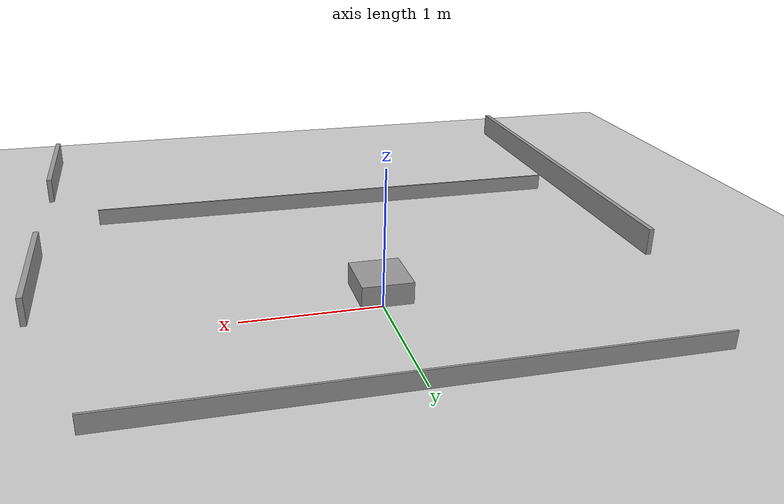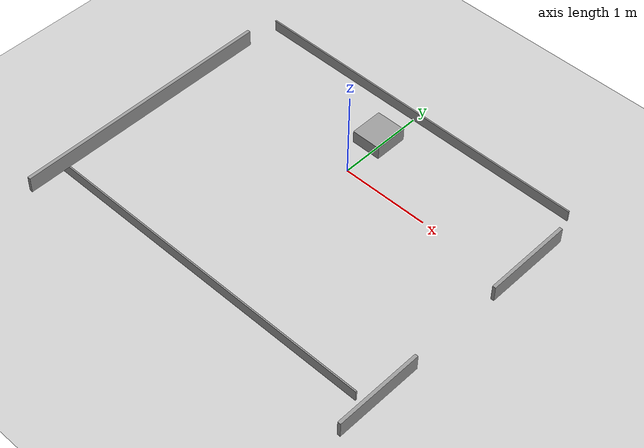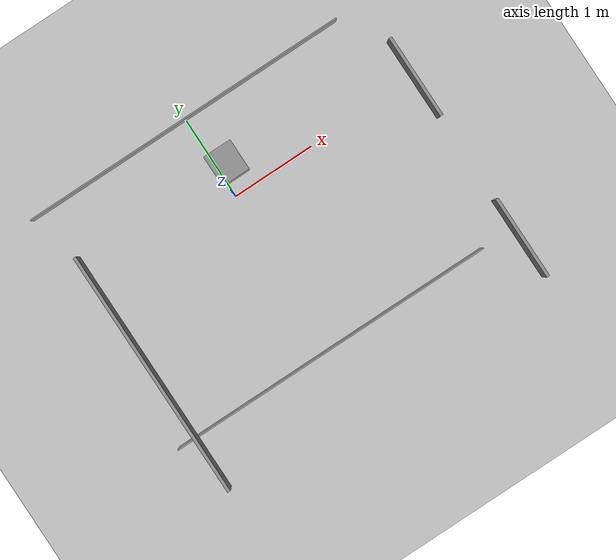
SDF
<sdf version="1.7">
 <world name="default">
  <light name="sun" type="directional">
   <pose>0 0 10 0 -0 0</pose>
   <diffuse>0.8 0.8 0.8 1</diffuse>
   <specular>0.2 0.2 0.2 1</specular>
   <attenuation>
    <range>1000</range>
    <constant>0.9</constant>
    <linear>0.01</linear>
    <quadratic>0.001</quadratic>
   </attenuation>
   <direction>-0.5 0.1 -0.9</direction>
   <spot><inner_angle>0</inner_angle><outer_angle>0</outer_angle><falloff>0</falloff></spot>
  </light>
  <model name="ground_plane">
   <static>1</static>
   <link name="link">
    <collision name="collision">
     <geometry><plane><normal>0 0 1</normal><size>100 100</size></plane></geometry>
     <surface>
      <contact><collide_bitmask>65535</collide_bitmask></contact>
      <friction><ode><mu>100</mu><mu2>50</mu2></ode></friction>
     </surface>
    </collision>
    <visual name="visual">
     <cast_shadows>0</cast_shadows>
     <geometry><plane><normal>0 0 1</normal><size>100 100</size></plane></geometry>
     <material>
      <script><uri>file://media/materials/scripts/gazebo.material</uri><name>Gazebo/Grey</name></script>
     </material>
    </visual>
   </link>
  </model>
  <gravity>0 0 -9.8</gravity>
  <magnetic_field>6e-06 2.3e-05 -4.2e-05</magnetic_field>
  <atmosphere type="adiabatic"/>
  <physics type="ode">
   <max_step_size>0.001</max_step_size>
   <real_time_factor>1</real_time_factor>
   <real_time_update_rate>1000</real_time_update_rate>
  </physics>
  <scene><ambient>0.4 0.4 0.4 1</ambient><background>0.7 0.7 0.7 1</background><shadows>1</shadows></scene>
  <spherical_coordinates>
   <surface_model>EARTH_WGS84</surface_model>
   <latitude_deg>0</latitude_deg>
   <longitude_deg>0</longitude_deg>
   <elevation>0</elevation>
   <heading_deg>0</heading_deg>
  </spherical_coordinates>
  <model name="3m-short-wall">
   <link name="link">
    <inertial>
     <mass>1</mass>
     <inertia>
      <ixx>0.166667</ixx>
      <ixy>0</ixy>
      <ixz>0</ixz>
      <iyy>0.166667</iyy>
      <iyz>0</iyz>
      <izz>0.166667</izz>
     </inertia>
    </inertial>
    <visual name="visual">
     <geometry><box><size>0.036017 2.92239 0.182131</size></box></geometry>
     <material>
      <script><name>Gazebo/Grey</name><uri>file://media/materials/scripts/gazebo.material</uri></script>
      <shader type="pixel"/>
     </material>
    </visual>
    <collision name="collision">
     <geometry><box><size>0.036017 2.92239 0.182131</size></box></geometry>
     <surface>
      <friction>
       <ode><mu>1</mu><mu2>1</mu2><fdir1>0 0 0</fdir1><slip1>0</slip1><slip2>0</slip2></ode>
       <torsional>
        <coefficient>1</coefficient>
        <patch_radius>0</patch_radius>
        <surface_radius>0</surface_radius>
        <use_patch_radius>1</use_patch_radius>
        <ode><slip>0</slip></ode>
       </torsional>
      </friction>
      <bounce><restitution_coefficient>0</restitution_coefficient><threshold>1e+06</threshold></bounce>
      <contact>
       <collide_without_contact>0</collide_without_contact>
       <collide_without_contact_bitmask>1</collide_without_contact_bitmask>
       <collide_bitmask>1</collide_bitmask>
       <ode>
        <soft_cfm>0</soft_cfm>
        <soft_erp>0.2</soft_erp>
        <kp>1e+13</kp>
        <kd>1</kd>
        <max_vel>0.01</max_vel>
        <min_depth>0</min_depth>
       </ode>
       <bullet>
        <split_impulse>1</split_impulse>
        <split_impulse_penetration_threshold>-0.01</split_impulse_penetration_threshold>
        <soft_cfm>0</soft_cfm>
        <soft_erp>0.2</soft_erp>
        <kp>1e+13</kp>
        <kd>1</kd>
       </bullet>
      </contact>
     </surface>
    </collision>
   </link>
   <static>0</static>
   <allow_auto_disable>0</allow_auto_disable>
   <pose>-1.74958 -1.11155 0.468396 0 -0 0</pose>
  </model>
  <model name="4m-short-wall">
   <link name="link">
    <inertial>
     <mass>0.64575</mass>
     <inertia>
      <ixx>0.00343683</ixx>
      <ixy>0</ixy>
      <ixz>0</ixz>
      <iyy>0.865496</iyy>
      <iyz>0</iyz>
      <izz>0.862086</izz>
     </inertia>
    </inertial>
    <kinematic>1</kinematic>
    <pose>-0.375458 -0.595598 -0.00071 0 -0 0</pose>
    <visual name="visual">
     <geometry><box><size>4.00249 0.015986 0.252213</size></box></geometry>
     <material>
      <script><name>Gazebo/Grey</name><uri>file://media/materials/scripts/gazebo.material</uri></script>
      <shader type="pixel"/>
     </material>
    </visual>
    <collision name="collision">
     <geometry><box><size>4.00249 0.015986 0.252213</size></box></geometry>
     <surface>
      <friction>
       <ode><mu>1</mu><mu2>1</mu2><fdir1>0 0 0</fdir1><slip1>0</slip1><slip2>0</slip2></ode>
       <torsional>
        <coefficient>1</coefficient>
        <patch_radius>0</patch_radius>
        <surface_radius>0</surface_radius>
        <use_patch_radius>1</use_patch_radius>
        <ode><slip>0</slip></ode>
       </torsional>
      </friction>
      <bounce><restitution_coefficient>0</restitution_coefficient><threshold>1e+06</threshold></bounce>
      <contact>
       <collide_without_contact>0</collide_without_contact>
       <collide_without_contact_bitmask>1</collide_without_contact_bitmask>
       <collide_bitmask>1</collide_bitmask>
       <ode>
        <soft_cfm>0</soft_cfm>
        <soft_erp>0.2</soft_erp>
        <kp>1e+13</kp>
        <kd>1</kd>
        <max_vel>0.01</max_vel>
        <min_depth>0</min_depth>
       </ode>
       <bullet>
        <split_impulse>1</split_impulse>
        <split_impulse_penetration_threshold>-0.01</split_impulse_penetration_threshold>
        <soft_cfm>0</soft_cfm>
        <soft_erp>0.2</soft_erp>
        <kp>1e+13</kp>
        <kd>1</kd>
       </bullet>
      </contact>
     </surface>
    </collision>
   </link>
   <static>1</static>
   <allow_auto_disable>0</allow_auto_disable>
   <pose>0.359797 1.60551 0 0 -0 0</pose>
  </model>
  <model name="1m-short-wall">
   <link name="link">
    <inertial>
     <mass>1</mass>
     <inertia>
      <ixx>0.166667</ixx>
      <ixy>0</ixy>
      <ixz>0</ixz>
      <iyy>0.166667</iyy>
      <iyz>0</iyz>
      <izz>0.166667</izz>
     </inertia>
    </inertial>
    <visual name="visual">
     <geometry><box><size>0.036017 0.970224 0.182131</size></box></geometry>
     <material>
      <script><name>Gazebo/Grey</name><uri>file://media/materials/scripts/gazebo.material</uri></script>
      <shader type="pixel"/>
     </material>
    </visual>
    <collision name="collision">
     <geometry><box><size>0.036017 0.970224 0.182131</size></box></geometry>
     <surface>
      <friction>
       <ode><mu>1</mu><mu2>1</mu2><fdir1>0 0 0</fdir1><slip1>0</slip1><slip2>0</slip2></ode>
       <torsional>
        <coefficient>1</coefficient>
        <patch_radius>0</patch_radius>
        <surface_radius>0</surface_radius>
        <use_patch_radius>1</use_patch_radius>
        <ode><slip>0</slip></ode>
       </torsional>
      </friction>
      <bounce><restitution_coefficient>0</restitution_coefficient><threshold>1e+06</threshold></bounce>
      <contact>
       <collide_without_contact>0</collide_without_contact>
       <collide_without_contact_bitmask>1</collide_without_contact_bitmask>
       <collide_bitmask>1</collide_bitmask>
       <ode>
        <soft_cfm>0</soft_cfm>
        <soft_erp>0.2</soft_erp>
        <kp>1e+13</kp>
        <kd>1</kd>
        <max_vel>0.01</max_vel>
        <min_depth>0</min_depth>
       </ode>
       <bullet>
        <split_impulse>1</split_impulse>
        <split_impulse_penetration_threshold>-0.01</split_impulse_penetration_threshold>
        <soft_cfm>0</soft_cfm>
        <soft_erp>0.2</soft_erp>
        <kp>1e+13</kp>
        <kd>1</kd>
       </bullet>
      </contact>
     </surface>
    </collision>
   </link>
   <static>0</static>
   <allow_auto_disable>0</allow_auto_disable>
   <pose>2.25587 -0.037774 0.468396 0 -0 0</pose>
  </model>
  <model name="1m-short-wall_clone">
   <link name="link">
    <inertial>
     <mass>1</mass>
     <inertia>
      <ixx>0.166667</ixx>
      <ixy>0</ixy>
      <ixz>0</ixz>
      <iyy>0.166667</iyy>
      <iyz>0</iyz>
      <izz>0.166667</izz>
     </inertia>
    </inertial>
    <visual name="visual">
     <geometry><box><size>0.036017 0.970224 0.182131</size></box></geometry>
     <material>
      <script><name>Gazebo/Grey</name><uri>file://media/materials/scripts/gazebo.material</uri></script>
      <shader type="pixel"/>
     </material>
    </visual>
    <collision name="collision">
     <geometry><box><size>0.036017 0.970224 0.182131</size></box></geometry>
     <surface>
      <friction>
       <ode><mu>1</mu><mu2>1</mu2><fdir1>0 0 0</fdir1><slip1>0</slip1><slip2>0</slip2></ode>
       <torsional>
        <coefficient>1</coefficient>
        <patch_radius>0</patch_radius>
        <surface_radius>0</surface_radius>
        <use_patch_radius>1</use_patch_radius>
        <ode><slip>0</slip></ode>
       </torsional>
      </friction>
      <bounce><restitution_coefficient>0</restitution_coefficient><threshold>1e+06</threshold></bounce>
      <contact>
       <collide_without_contact>0</collide_without_contact>
       <collide_without_contact_bitmask>1</collide_without_contact_bitmask>
       <collide_bitmask>1</collide_bitmask>
       <ode>
        <soft_cfm>0</soft_cfm>
        <soft_erp>0.2</soft_erp>
        <kp>1e+13</kp>
        <kd>1</kd>
        <max_vel>0.01</max_vel>
        <min_depth>0</min_depth>
       </ode>
       <bullet>
        <split_impulse>1</split_impulse>
        <split_impulse_penetration_threshold>-0.01</split_impulse_penetration_threshold>
        <soft_cfm>0</soft_cfm>
        <soft_erp>0.2</soft_erp>
        <kp>1e+13</kp>
        <kd>1</kd>
       </bullet>
      </contact>
     </surface>
    </collision>
   </link>
   <static>0</static>
   <allow_auto_disable>0</allow_auto_disable>
   <pose>2.25678 -2.05064 0.468396 0 -0 0</pose>
  </model>
  <model name="4m-short-wall_clone">
   <link name="link">
    <inertial>
     <mass>0.64575</mass>
     <inertia>
      <ixx>0.00343683</ixx>
      <ixy>0</ixy>
      <ixz>0</ixz>
      <iyy>0.865496</iyy>
      <iyz>0</iyz>
      <izz>0.862086</izz>
     </inertia>
    </inertial>
    <kinematic>1</kinematic>
    <pose>-0.375458 -0.595598 -0.00071 0 -0 0</pose>
    <visual name="visual">
     <geometry><box><size>4.00249 0.015986 0.252213</size></box></geometry>
     <material>
      <script><name>Gazebo/Grey</name><uri>file://media/materials/scripts/gazebo.material</uri></script>
      <shader type="pixel"/>
     </material>
    </visual>
    <collision name="collision">
     <geometry><box><size>4.00249 0.015986 0.252213</size></box></geometry>
     <surface>
      <friction>
       <ode><mu>1</mu><mu2>1</mu2><fdir1>0 0 0</fdir1><slip1>0</slip1><slip2>0</slip2></ode>
       <torsional>
        <coefficient>1</coefficient>
        <patch_radius>0</patch_radius>
        <surface_radius>0</surface_radius>
        <use_patch_radius>1</use_patch_radius>
        <ode><slip>0</slip></ode>
       </torsional>
      </friction>
      <bounce><restitution_coefficient>0</restitution_coefficient><threshold>1e+06</threshold></bounce>
      <contact>
       <collide_without_contact>0</collide_without_contact>
       <collide_without_contact_bitmask>1</collide_without_contact_bitmask>
       <collide_bitmask>1</collide_bitmask>
       <ode>
        <soft_cfm>0</soft_cfm>
        <soft_erp>0.2</soft_erp>
        <kp>1e+13</kp>
        <kd>1</kd>
        <max_vel>0.01</max_vel>
        <min_depth>0</min_depth>
       </ode>
       <bullet>
        <split_impulse>1</split_impulse>
        <split_impulse_penetration_threshold>-0.01</split_impulse_penetration_threshold>
        <soft_cfm>0</soft_cfm>
        <soft_erp>0.2</soft_erp>
        <kp>1e+13</kp>
        <kd>1</kd>
       </bullet>
      </contact>
     </surface>
    </collision>
   </link>
   <static>1</static>
   <allow_auto_disable>0</allow_auto_disable>
   <pose>0.320675 -1.37727 0 0 -0 0</pose>
  </model>
  <model name="half-meter-short-box">
   <link name="link">
    <inertial>
     <mass>1</mass>
     <inertia>
      <ixx>0.166667</ixx>
      <ixy>0</ixy>
      <ixz>0</ixz>
      <iyy>0.166667</iyy>
      <iyz>0</iyz>
      <izz>0.166667</izz>
     </inertia>
    </inertial>
    <visual name="visual">
     <geometry><box><size>0.337429 0.37113 0.145877</size></box></geometry>
     <material>
      <script><name>Gazebo/Grey</name><uri>file://media/materials/scripts/gazebo.material</uri></script>
      <shader type="pixel"/>
     </material>
    </visual>
    <collision name="collision">
     <geometry><box><size>0.337429 0.37113 0.145877</size></box></geometry>
     <surface>
      <friction>
       <ode><mu>1</mu><mu2>1</mu2><fdir1>0 0 0</fdir1><slip1>0</slip1><slip2>0</slip2></ode>
       <torsional>
        <coefficient>1</coefficient>
        <patch_radius>0</patch_radius>
        <surface_radius>0</surface_radius>
        <use_patch_radius>1</use_patch_radius>
        <ode><slip>0</slip></ode>
       </torsional>
      </friction>
      <bounce><restitution_coefficient>0</restitution_coefficient><threshold>1e+06</threshold></bounce>
      <contact>
       <collide_without_contact>0</collide_without_contact>
       <collide_without_contact_bitmask>1</collide_without_contact_bitmask>
       <collide_bitmask>1</collide_bitmask>
       <ode>
        <soft_cfm>0</soft_cfm>
        <soft_erp>0.2</soft_erp>
        <kp>1e+13</kp>
        <kd>1</kd>
        <max_vel>0.01</max_vel>
        <min_depth>0</min_depth>
       </ode>
       <bullet>
        <split_impulse>1</split_impulse>
        <split_impulse_penetration_threshold>-0.01</split_impulse_penetration_threshold>
        <soft_cfm>0</soft_cfm>
        <soft_erp>0.2</soft_erp>
        <kp>1e+13</kp>
        <kd>1</kd>
       </bullet>
      </contact>
     </surface>
    </collision>
   </link>
   <static>0</static>
   <allow_auto_disable>0</allow_auto_disable>
   <pose>0.113737 0.315559 0.353684 0 -0 0</pose>
  </model>
 </world>
</sdf>
